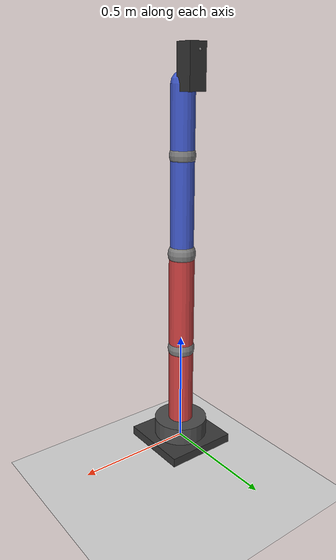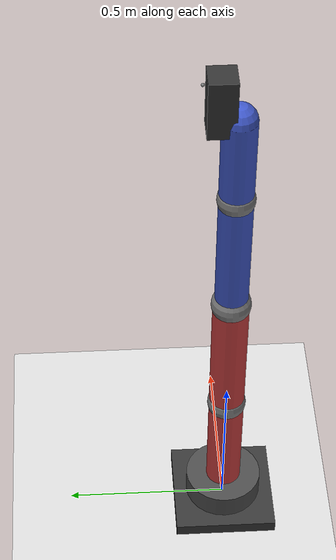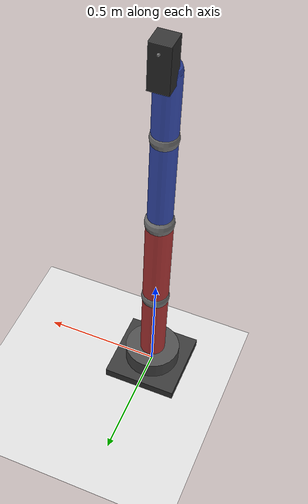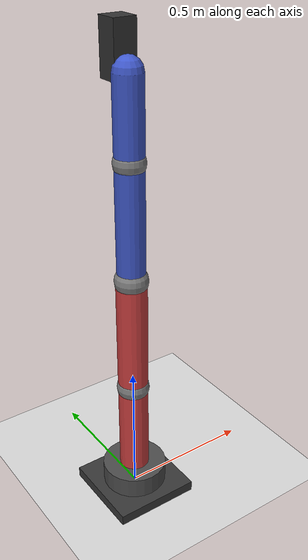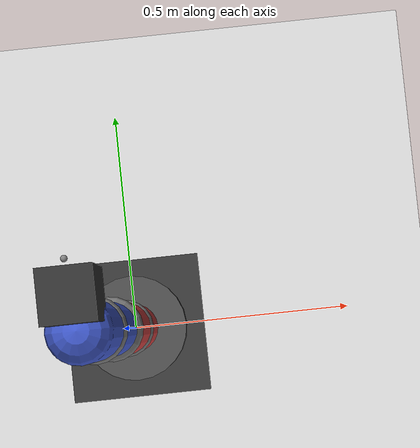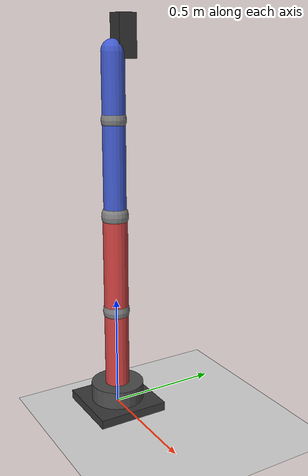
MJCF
<mujoco model="rokae_xmate_er3">
  <compiler angle="radian" autolimits="true"/>
  <!-- Zero-gravity reach task so full 6-DOF can be learned reliably. -->
  <option timestep="0.02" gravity="0 0 0" integrator="Euler"/>

  <default>
    <joint damping="0.5" armature="0.02"/>
    <geom friction="0.6 0.1 0.1" density="900"/>
    <motor ctrllimited="true" ctrlrange="-1 1" forcerange="-1 1"/>
  </default>

  <asset>
    <texture name="tex" type="2d" builtin="checker" rgb1="0.16 0.16 0.16" rgb2="0.26 0.26 0.26" width="256" height="256"/>
    <material name="floor" texture="tex" texrepeat="6 6" reflectance="0.3"/>
  </asset>

  <worldbody>
    <light name="light" pos="2.5 -2.0 3.5" dir="-0.5 0.4 -1" diffuse="0.9 0.9 0.9" specular="0.1 0.1 0.1"/>
    <camera name="cam_iso" pos="2.2 -2.2 1.8" xyaxes="0.7071 0.7071 0 -0.2560 0.2560 0.9394" fovy="50"/>
    <geom name="floor" type="plane" size="4 4 0.1" pos="0 0 -0.06" rgba="0.85 0.85 0.85 1" material="floor" contype="0" conaffinity="0"/>

    <!-- Fixed pedestal. -->
    <body name="base" pos="0 0 0">
      <geom name="base_pedestal" type="cylinder" size="0.12 0.05" pos="0 0 0.05" rgba="0.30 0.30 0.30 1"/>
      <geom name="base_plate" type="box" size="0.16 0.16 0.02" pos="0 0 0.0" rgba="0.22 0.22 0.22 1"/>
      <site name="base_site" pos="0 0 0.06"/>

      <body name="link1" pos="0 0 0.05">
        <joint name="joint1" type="hinge" axis="0 0 1" limited="true"
               range="-2.9671 2.9671"/>
        <geom name="link1_geom" type="capsule" fromto="0 0 0 0 0 0.404"
              size="0.055" rgba="0.80 0.25 0.25 1"/>
        <geom name="link1_shoulder" type="sphere" size="0.06" pos="0 0 0.404"
              rgba="0.5 0.5 0.5 1"/>
        <site name="joint2_site" pos="0 0 0.404"/>

        <body name="link2" pos="0 0 0.404">
          <joint name="joint2" type="hinge" axis="0 1 0" limited="true"
                 range="-2.0944 2.0944"/>
          <geom name="link2_geom" type="capsule" fromto="0 0 0 0 0 0.4375"
                size="0.055" rgba="0.80 0.25 0.25 1"/>
          <geom name="link2_elbow" type="sphere" size="0.06" pos="0 0 0.4375"
                rgba="0.5 0.5 0.5 1"/>
          <site name="joint3_site" pos="0 0 0.4375"/>

          <body name="link3" pos="0 0 0.4375">
            <joint name="joint3" type="hinge" axis="0 1 0" limited="true"
                   range="-2.0944 2.0944"/>
            <geom name="link3_geom" type="capsule" fromto="0 0 0 0 0 0.4125"
                  size="0.05" rgba="0.25 0.35 0.80 1"/>
            <site name="joint4_site" pos="0 0 0.4125"/>

            <body name="link4" pos="0 0 0.4125">
              <joint name="joint4" type="hinge" axis="0 0 1" limited="true"
                     range="-2.9671 2.9671"/>
              <geom name="link4_wrist" type="sphere" size="0.055" pos="0 0 0"
                    rgba="0.5 0.5 0.5 1"/>

              <body name="link5" pos="0 0 0">
                <joint name="joint5" type="hinge" axis="0 1 0" limited="true"
                       range="-2.0944 2.0944"/>
                <geom name="link5_geom" type="capsule" fromto="0 0 0 0 0 0.2755"
                      size="0.05" rgba="0.25 0.35 0.80 1"/>
                <site name="joint6_site" pos="0 0 0.2755"/>

                <body name="link6" pos="0 0 0.2755">
                  <joint name="joint6" type="hinge" axis="0 0 1" limited="true"
                         range="-6.2832 6.2832"/>
                  <geom name="link6_tool" type="box" size="0.04 0.04 0.09"
                        pos="0 0.05 0.06" rgba="0.2 0.2 0.2 1"/>
                  <!-- Off-axis tool tip: every one of the 6 joints affects it. -->
                  <site name="tool" pos="0 0.10 0.12"/>
                </body>
              </body>
            </body>
          </body>
        </body>
      </body>
    </body>

    <!-- Kinematic target. -->
    <body name="target" mocap="true">
      <geom name="target_geom" type="sphere" size="0.07" rgba="0.10 0.75 0.25 1"
            contype="0" conaffinity="0"/>
      <site name="target_site" pos="0 0 0"/>
    </body>
  </worldbody>

  <actuator>
    <motor name="a1" joint="joint1" gear="8.0"/>
    <motor name="a2" joint="joint2" gear="8.0"/>
    <motor name="a3" joint="joint3" gear="6.0"/>
    <motor name="a4" joint="joint4" gear="3.0"/>
    <motor name="a5" joint="joint5" gear="3.0"/>
    <motor name="a6" joint="joint6" gear="2.0"/>
  </actuator>

  <sensor>
    <jointpos name="jp1" joint="joint1"/>
    <jointpos name="jp2" joint="joint2"/>
    <jointpos name="jp3" joint="joint3"/>
    <jointpos name="jp4" joint="joint4"/>
    <jointpos name="jp5" joint="joint5"/>
    <jointpos name="jp6" joint="joint6"/>
    <jointvel name="jv1" joint="joint1"/>
    <jointvel name="jv2" joint="joint2"/>
    <jointvel name="jv3" joint="joint3"/>
    <jointvel name="jv4" joint="joint4"/>
    <jointvel name="jv5" joint="joint5"/>
    <jointvel name="jv6" joint="joint6"/>
  </sensor>
</mujoco>
